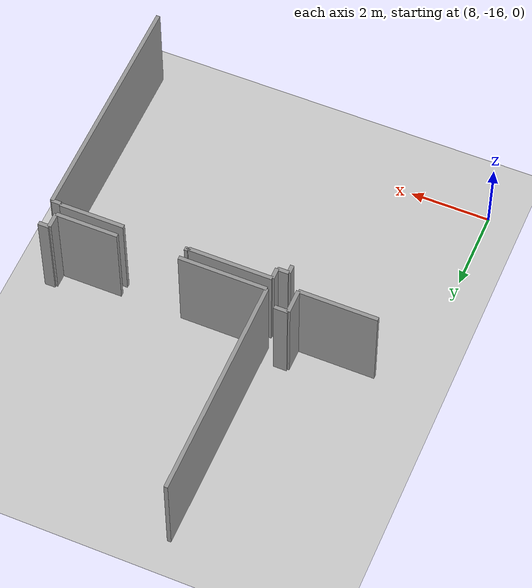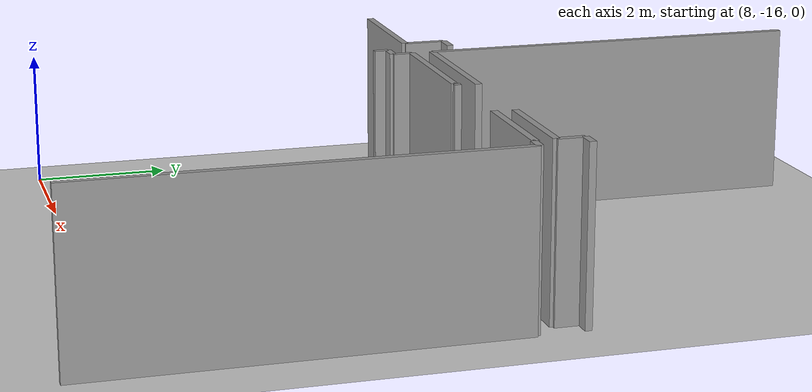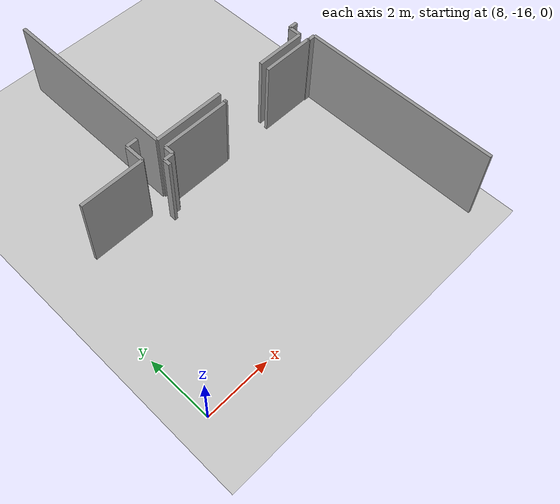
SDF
<sdf version="1.6">
 <world name="default">
  <model name="ground_plane">
   <static>1</static>
   <link name="link">
    <collision name="collision">
     <geometry><plane><normal>0 0 1</normal><size>100 100</size></plane></geometry>
     <surface><friction><ode><mu>100</mu><mu2>50</mu2></ode></friction></surface>
    </collision>
    <visual name="visual">
     <cast_shadows>0</cast_shadows>
     <geometry><plane><normal>0 0 1</normal><size>100 100</size></plane></geometry>
     <material>
      <script><uri>file://media/materials/scripts/gazebo.material</uri><name>Gazebo/Grey</name></script>
     </material>
    </visual>
   </link>
  </model>
  <model name="50055648">
   <static>1</static>
   <link name="Wall_138">
    <collision name="Wall_138_Collision">
     <geometry><box><size>0.211252397708 0.1 2.5</size></box></geometry>
     <pose>0.105626198854 0 1.25 0 0 0</pose>
    </collision>
    <visual name="Wall_138_Visual">
     <pose>0.105626198854 0 1.25 0 0 0</pose>
     <geometry><box><size>0.211252397708 0.1 2.5</size></box></geometry>
     <material>
      <script><uri>file://media/materials/scripts/gazebo.material</uri><name>Gazebo/Grey</name></script>
      <ambient>1 1 1 1</ambient>
     </material>
    </visual>
    <pose>28.4006808857 -35.392461986 0 0 0 1.57079632679</pose>
   </link>
   <link name="Wall_139">
    <collision name="Wall_139_Collision">
     <geometry><box><size>0.289630467093 0.1 2.5</size></box></geometry>
     <pose>0.144815233546 0 1.25 0 0 0</pose>
    </collision>
    <visual name="Wall_139_Visual">
     <pose>0.144815233546 0 1.25 0 0 0</pose>
     <geometry><box><size>0.289630467093 0.1 2.5</size></box></geometry>
     <material>
      <script><uri>file://media/materials/scripts/gazebo.material</uri><name>Gazebo/Grey</name></script>
      <ambient>1 1 1 1</ambient>
     </material>
    </visual>
    <pose>28.4006808857 -35.1812095883 0 0 0 0.0</pose>
   </link>
   <link name="Wall_140">
    <collision name="Wall_140_Collision">
     <geometry><box><size>0.289503436186 0.1 2.5</size></box></geometry>
     <pose>0.144751718093 0 1.25 0 0 0</pose>
    </collision>
    <visual name="Wall_140_Visual">
     <pose>0.144751718093 0 1.25 0 0 0</pose>
     <geometry><box><size>0.289503436186 0.1 2.5</size></box></geometry>
     <material>
      <script><uri>file://media/materials/scripts/gazebo.material</uri><name>Gazebo/Grey</name></script>
      <ambient>1 1 1 1</ambient>
     </material>
    </visual>
    <pose>28.6903113528 -35.1812095883 0 0 0 1.57079632679</pose>
   </link>
   <link name="Wall_141">
    <collision name="Wall_141_Collision">
     <geometry><box><size>2.09880463917 0.1 2.5</size></box></geometry>
     <pose>1.04940231958 0 1.25 0 0 0</pose>
    </collision>
    <visual name="Wall_141_Visual">
     <pose>1.04940231958 0 1.25 0 0 0</pose>
     <geometry><box><size>2.09880463917 0.1 2.5</size></box></geometry>
     <material>
      <script><uri>file://media/materials/scripts/gazebo.material</uri><name>Gazebo/Grey</name></script>
      <ambient>1 1 1 1</ambient>
     </material>
    </visual>
    <pose>28.6903113528 -34.8917061521 0 0 0 0.0</pose>
   </link>
   <link name="Wall_142">
    <collision name="Wall_142_Collision">
     <geometry><box><size>0.0235007177246 0.1 2.5</size></box></geometry>
     <pose>0.0117503588623 0 1.25 0 0 0</pose>
    </collision>
    <visual name="Wall_142_Visual">
     <pose>0.0117503588623 0 1.25 0 0 0</pose>
     <geometry><box><size>0.0235007177246 0.1 2.5</size></box></geometry>
     <material>
      <script><uri>file://media/materials/scripts/gazebo.material</uri><name>Gazebo/Grey</name></script>
      <ambient>1 1 1 1</ambient>
     </material>
    </visual>
    <pose>30.7891159919 -34.8917061521 0 0 0 1.57079632679</pose>
   </link>
   <link name="Wall_143">
    <collision name="Wall_143_Collision">
     <geometry><box><size>0.087143201941 0.1 2.5</size></box></geometry>
     <pose>0.0435716009705 0 1.25 0 0 0</pose>
    </collision>
    <visual name="Wall_143_Visual">
     <pose>0.0435716009705 0 1.25 0 0 0</pose>
     <geometry><box><size>0.087143201941 0.1 2.5</size></box></geometry>
     <material>
      <script><uri>file://media/materials/scripts/gazebo.material</uri><name>Gazebo/Grey</name></script>
      <ambient>1 1 1 1</ambient>
     </material>
    </visual>
    <pose>30.7891159919 -34.8682054344 0 0 0 0.0</pose>
   </link>
   <link name="Wall_144">
    <collision name="Wall_144_Collision">
     <geometry><box><size>1.63196605734 0.1 2.5</size></box></geometry>
     <pose>0.815983028671 0 1.25 0 0 0</pose>
    </collision>
    <visual name="Wall_144_Visual">
     <pose>0.815983028671 0 1.25 0 0 0</pose>
     <geometry><box><size>1.63196605734 0.1 2.5</size></box></geometry>
     <material>
      <script><uri>file://media/materials/scripts/gazebo.material</uri><name>Gazebo/Grey</name></script>
      <ambient>1 1 1 1</ambient>
     </material>
    </visual>
    <pose>32.4266714092 -34.8682054344 0 0 0 0.0</pose>
   </link>
   <link name="Wall_145">
    <collision name="Wall_145_Collision">
     <geometry><box><size>0.023373686818 0.1 2.5</size></box></geometry>
     <pose>0.011686843409 0 1.25 0 0 0</pose>
    </collision>
    <visual name="Wall_145_Visual">
     <pose>0.011686843409 0 1.25 0 0 0</pose>
     <geometry><box><size>0.023373686818 0.1 2.5</size></box></geometry>
     <material>
      <script><uri>file://media/materials/scripts/gazebo.material</uri><name>Gazebo/Grey</name></script>
      <ambient>1 1 1 1</ambient>
     </material>
    </visual>
    <pose>34.0586374665 -34.8682054344 0 0 0 -1.57079632679</pose>
   </link>
   <link name="Wall_146">
    <collision name="Wall_146_Collision">
     <geometry><box><size>0.223193302931 0.1 2.5</size></box></geometry>
     <pose>0.111596651465 0 1.25 0 0 0</pose>
    </collision>
    <visual name="Wall_146_Visual">
     <pose>0.111596651465 0 1.25 0 0 0</pose>
     <geometry><box><size>0.223193302931 0.1 2.5</size></box></geometry>
     <material>
      <script><uri>file://media/materials/scripts/gazebo.material</uri><name>Gazebo/Grey</name></script>
      <ambient>1 1 1 1</ambient>
     </material>
    </visual>
    <pose>34.0586374665 -34.8915791212 0 0 0 0.0</pose>
   </link>
   <link name="Wall_147">
    <collision name="Wall_147_Collision">
     <geometry><box><size>6.01923247926 0.1 2.5</size></box></geometry>
     <pose>3.00961623963 0 1.25 0 0 0</pose>
    </collision>
    <visual name="Wall_147_Visual">
     <pose>3.00961623963 0 1.25 0 0 0</pose>
     <geometry><box><size>6.01923247926 0.1 2.5</size></box></geometry>
     <material>
      <script><uri>file://media/materials/scripts/gazebo.material</uri><name>Gazebo/Grey</name></script>
      <ambient>1 1 1 1</ambient>
     </material>
    </visual>
    <pose>34.2818307694 -34.8915791212 0 0 0 -1.57079632679</pose>
   </link>
   <link name="Wall_237">
    <collision name="Wall_237_Collision">
     <geometry><box><size>0.34272938606 0.1 2.5</size></box></geometry>
     <pose>0.17136469303 0 1.25 0 0 0</pose>
    </collision>
    <visual name="Wall_237_Visual">
     <pose>0.17136469303 0 1.25 0 0 0</pose>
     <geometry><box><size>0.34272938606 0.1 2.5</size></box></geometry>
     <material>
      <script><uri>file://media/materials/scripts/gazebo.material</uri><name>Gazebo/Grey</name></script>
      <ambient>1 1 1 1</ambient>
     </material>
    </visual>
    <pose>28.3485982139 -34.1916388257 0 0 0 3.14159265359</pose>
   </link>
   <link name="Wall_238">
    <collision name="Wall_238_Collision">
     <geometry><box><size>0.608986166334 0.1 2.5</size></box></geometry>
     <pose>0.304493083167 0 1.25 0 0 0</pose>
    </collision>
    <visual name="Wall_238_Visual">
     <pose>0.304493083167 0 1.25 0 0 0</pose>
     <geometry><box><size>0.608986166334 0.1 2.5</size></box></geometry>
     <material>
      <script><uri>file://media/materials/scripts/gazebo.material</uri><name>Gazebo/Grey</name></script>
      <ambient>1 1 1 1</ambient>
     </material>
    </visual>
    <pose>28.0058688279 -34.1916388257 0 0 0 -1.57079632679</pose>
   </link>
   <link name="Wall_239">
    <collision name="Wall_239_Collision">
     <geometry><box><size>1.9689790526 0.1 2.5</size></box></geometry>
     <pose>0.984489526302 0 1.25 0 0 0</pose>
    </collision>
    <visual name="Wall_239_Visual">
     <pose>0.984489526302 0 1.25 0 0 0</pose>
     <geometry><box><size>1.9689790526 0.1 2.5</size></box></geometry>
     <material>
      <script><uri>file://media/materials/scripts/gazebo.material</uri><name>Gazebo/Grey</name></script>
      <ambient>1 1 1 1</ambient>
     </material>
    </visual>
    <pose>28.0058688279 -34.8006249921 0 0 0 3.14159265359</pose>
   </link>
   <link name="Wall_269">
    <collision name="Wall_269_Collision">
     <geometry><box><size>5.6303908741 0.1 2.5</size></box></geometry>
     <pose>2.81519543705 0 1.25 0 0 0</pose>
    </collision>
    <visual name="Wall_269_Visual">
     <pose>2.81519543705 0 1.25 0 0 0</pose>
     <geometry><box><size>5.6303908741 0.1 2.5</size></box></geometry>
     <material>
      <script><uri>file://media/materials/scripts/gazebo.material</uri><name>Gazebo/Grey</name></script>
      <ambient>1 1 1 1</ambient>
     </material>
    </visual>
    <pose>28.69272494 -34.576288411 0 0 0 1.57079632679</pose>
   </link>
   <link name="Wall_272">
    <collision name="Wall_272_Collision">
     <geometry><box><size>0.268289274781 0.1 2.5</size></box></geometry>
     <pose>0.13414463739 0 1.25 0 0 0</pose>
    </collision>
    <visual name="Wall_272_Visual">
     <pose>0.13414463739 0 1.25 0 0 0</pose>
     <geometry><box><size>0.268289274781 0.1 2.5</size></box></geometry>
     <material>
      <script><uri>file://media/materials/scripts/gazebo.material</uri><name>Gazebo/Grey</name></script>
      <ambient>1 1 1 1</ambient>
     </material>
    </visual>
    <pose>34.2933905819 -34.1927821039 0 0 0 3.14159265359</pose>
   </link>
   <link name="Wall_273">
    <collision name="Wall_273_Collision">
     <geometry><box><size>0.38630098703 0.1 2.5</size></box></geometry>
     <pose>0.193150493515 0 1.25 0 0 0</pose>
    </collision>
    <visual name="Wall_273_Visual">
     <pose>0.193150493515 0 1.25 0 0 0</pose>
     <geometry><box><size>0.38630098703 0.1 2.5</size></box></geometry>
     <material>
      <script><uri>file://media/materials/scripts/gazebo.material</uri><name>Gazebo/Grey</name></script>
      <ambient>1 1 1 1</ambient>
     </material>
    </visual>
    <pose>34.0251013071 -34.1927821039 0 0 0 -1.57079632679</pose>
   </link>
   <link name="Wall_274">
    <collision name="Wall_274_Collision">
     <geometry><box><size>1.57086419126 0.1 2.5</size></box></geometry>
     <pose>0.785432095629 0 1.25 0 0 0</pose>
    </collision>
    <visual name="Wall_274_Visual">
     <pose>0.785432095629 0 1.25 0 0 0</pose>
     <geometry><box><size>1.57086419126 0.1 2.5</size></box></geometry>
     <material>
      <script><uri>file://media/materials/scripts/gazebo.material</uri><name>Gazebo/Grey</name></script>
      <ambient>1 1 1 1</ambient>
     </material>
    </visual>
    <pose>34.0251013071 -34.5790830909 0 0 0 3.14159265359</pose>
   </link>
   <link name="Wall_275">
    <collision name="Wall_275_Collision">
     <geometry><box><size>2.21059360354 0.1 2.5</size></box></geometry>
     <pose>1.10529680177 0 1.25 0 0 0</pose>
    </collision>
    <visual name="Wall_275_Visual">
     <pose>1.10529680177 0 1.25 0 0 0</pose>
     <geometry><box><size>2.21059360354 0.1 2.5</size></box></geometry>
     <material>
      <script><uri>file://media/materials/scripts/gazebo.material</uri><name>Gazebo/Grey</name></script>
      <ambient>1 1 1 1</ambient>
     </material>
    </visual>
    <pose>30.903316777 -34.5790830909 0 0 0 3.14032843176</pose>
   </link>
   <pose>-17.15 24.0530474714 0 0 0 0</pose>
  </model>
 </world>
</sdf>
